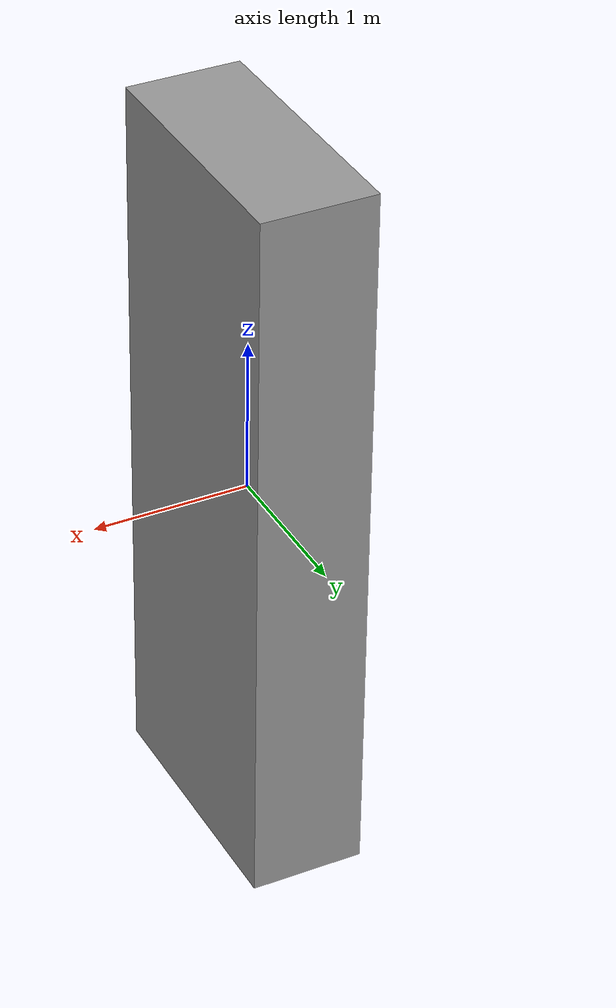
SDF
<?xml version='1.0'?>
<sdf version='1.7'>
  <model name='small_wall_1'>
    <link name='link_1'>
      <inertial>
        <mass>5.85</mass>
        <inertia>
          <ixx>12.2138</ixx>
          <ixy>0</ixy>
          <ixz>0</ixz>
          <iyy>11.0552</iyy>
          <iyz>0</iyz>
          <izz>1.67679</izz>
        </inertia>
        <pose>0 0 0 0 -0 0</pose>
      </inertial>
      <pose>5e-06 -4e-05 0 0 -0 0</pose>
      <visual name='visual'>
        <pose>0 0 0 0 -0 0</pose>
        <geometry>
          <box>
            <size>0.729034 1.70531 4.70593</size>
          </box>
        </geometry>
        <material>
          <lighting>1</lighting>
          <script>
            <uri>file://media/materials/scripts/gazebo.material</uri>
            <name>Gazebo/Grey</name>
          </script>
          <shader type='pixel'/>
        </material>
        <transparency>0</transparency>
        <cast_shadows>1</cast_shadows>
      </visual>
      <collision name='collision'>
        <laser_retro>0</laser_retro>
        <max_contacts>10</max_contacts>
        <pose>0 0 0 0 -0 0</pose>
        <geometry>
          <box>
            <size>0.729034 1.70531 4.70593</size>
          </box>
        </geometry>
        <surface>
          <friction>
            <ode>
              <mu>1</mu>
              <mu2>1</mu2>
              <fdir1>0 0 0</fdir1>
              <slip1>0</slip1>
              <slip2>0</slip2>
            </ode>
            <torsional>
              <coefficient>1</coefficient>
              <patch_radius>0</patch_radius>
              <surface_radius>0</surface_radius>
              <use_patch_radius>1</use_patch_radius>
              <ode>
                <slip>0</slip>
              </ode>
            </torsional>
          </friction>
          <bounce>
            <restitution_coefficient>0</restitution_coefficient>
            <threshold>1e+06</threshold>
          </bounce>
          <contact>
            <collide_without_contact>0</collide_without_contact>
            <collide_without_contact_bitmask>1</collide_without_contact_bitmask>
            <collide_bitmask>1</collide_bitmask>
            <ode>
              <soft_cfm>0</soft_cfm>
              <soft_erp>0.2</soft_erp>
              <kp>1e+13</kp>
              <kd>1</kd>
              <max_vel>0.01</max_vel>
              <min_depth>0</min_depth>
            </ode>
            <bullet>
              <split_impulse>1</split_impulse>
              <split_impulse_penetration_threshold>-0.01</split_impulse_penetration_threshold>
              <soft_cfm>0</soft_cfm>
              <soft_erp>0.2</soft_erp>
              <kp>1e+13</kp>
              <kd>1</kd>
            </bullet>
          </contact>
        </surface>
      </collision>
    </link>
    <static>0</static>
    <allow_auto_disable>1</allow_auto_disable>
  </model>
</sdf>
